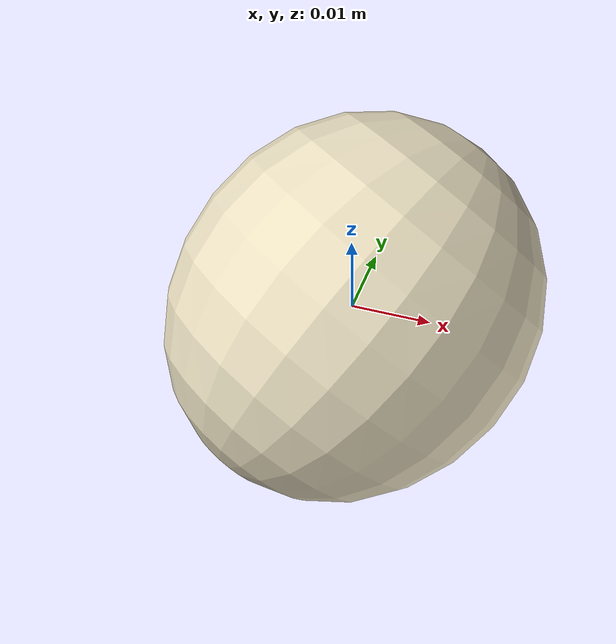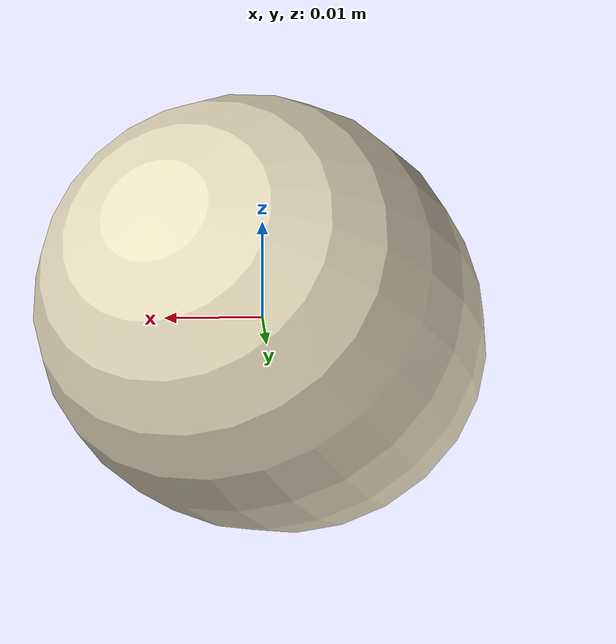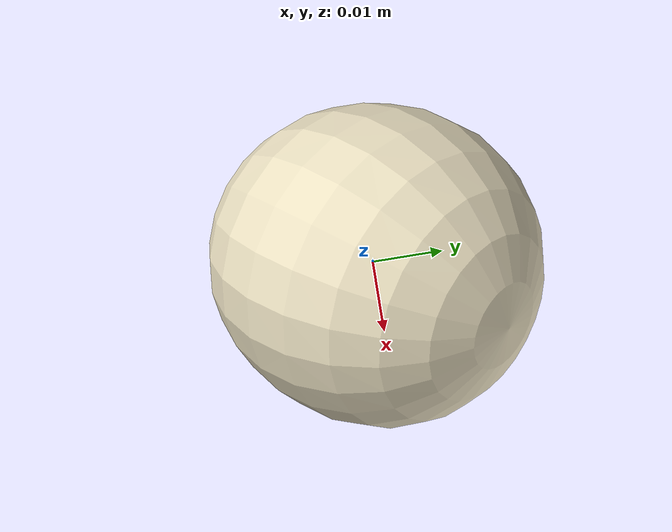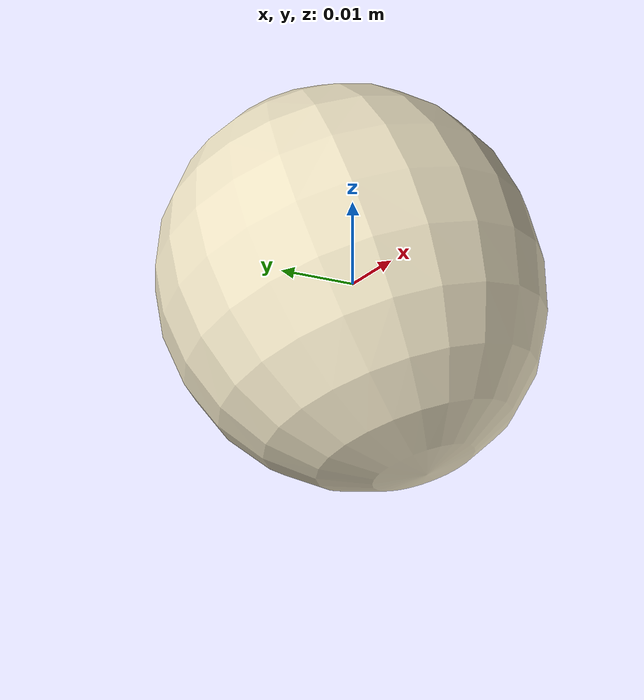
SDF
<?xml version="1.0"?>
<sdf version="1.7">
  <model name="cotton_pick_B_05">
    <static>false</static>
    <allow_auto_disable>false</allow_auto_disable>
    <link name="cotton_pick_B_05_link">
      <gravity>false</gravity>
      <self_collide>false</self_collide>
      <inertial>
        <mass>0.01200</mass>
        <inertia>
          <ixx>0.00000195</ixx>
          <iyy>0.00000195</iyy>
          <izz>0.00000195</izz>
          <ixy>0</ixy>
          <ixz>0</ixz>
          <iyz>0</iyz>
        </inertia>
      </inertial>
      <visual name="cotton_pick_B_05_visual">
        <geometry>
          <mesh>
            <uri>model://cotton_pick_B_05/meshes/cotton_pick_B_05.dae</uri>
          </mesh>
        </geometry>
      </visual>
      <collision name="cotton_pick_B_05_sphere_collision">
        <geometry>
          <sphere>
            <radius>0.02013</radius>
          </sphere>
        </geometry>
        <surface>
          <friction>
            <ode>
              <mu>1.6</mu>
              <mu2>1.6</mu2>
            </ode>
          </friction>
          <contact>
            <ode>
              <kp>8000</kp>
              <kd>80</kd>
            </ode>
          </contact>
        </surface>
      </collision>
    </link>
  </model>
</sdf>
